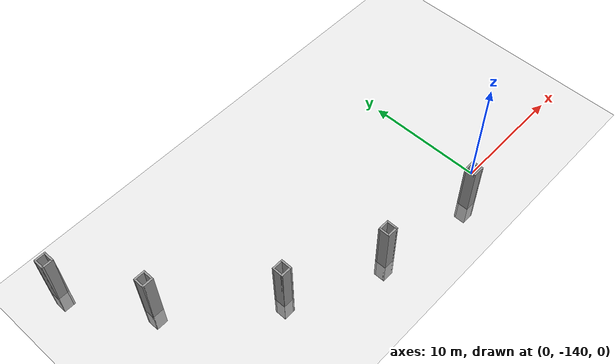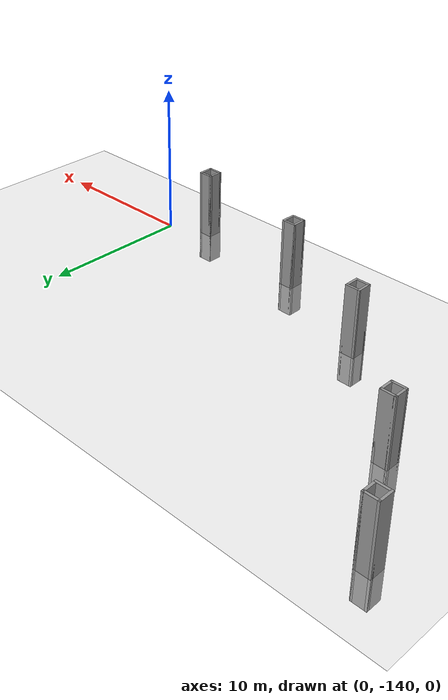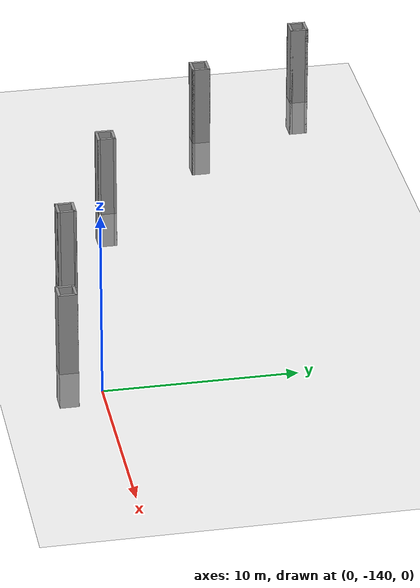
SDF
<sdf version="1.6">
 <world name="default">
  <model name="ground_plane">
   <static>1</static>
   <link name="link">
    <collision name="collision">
     <geometry><plane><normal>0 0 1</normal><size>320 320</size></plane></geometry>
     <surface>
      <contact><collide_bitmask>65535</collide_bitmask></contact>
      <friction><ode><mu>100</mu><mu2>50</mu2></ode></friction>
     </surface>
    </collision>
    <visual name="visual">
     <cast_shadows>0</cast_shadows>
     <geometry><plane><normal>0 0 1</normal><size>320 320</size></plane></geometry>
     <material>
      <script><uri>file://media/materials/scripts/gazebo.material</uri><name>Gazebo/Grey</name></script>
     </material>
    </visual>
   </link>
  </model>
  <model name="box_1mx1m_16">
   <pose>-29.5327 -123.97 0 0 -0 0</pose>
   <link name="Wall_10">
    <collision name="Wall_10_Collision">
     <geometry><box><size>1 0.15 6.555</size></box></geometry>
     <pose>0 0 1.25 0 -0 0</pose>
    </collision>
    <visual name="Wall_10_Visual">
     <pose>0 0 1.25 0 -0 0</pose>
     <geometry><box><size>1 0.15 6.555</size></box></geometry>
     <material>
      <script><uri>file://media/materials/scripts/gazebo.material</uri><name>Gazebo/Grey</name></script>
      <ambient>1 1 1 1</ambient>
     </material>
     <meta><layer>0</layer></meta>
    </visual>
    <pose>-0.425 0 0 0 -0 -1.5708</pose>
   </link>
   <link name="Wall_11">
    <collision name="Wall_11_Collision">
     <geometry><box><size>1 0.15 6.555</size></box></geometry>
     <pose>0 0 1.25 0 -0 0</pose>
    </collision>
    <visual name="Wall_11_Visual">
     <pose>0 0 1.25 0 -0 0</pose>
     <geometry><box><size>1 0.15 6.555</size></box></geometry>
     <material>
      <script><uri>file://media/materials/scripts/gazebo.material</uri><name>Gazebo/Grey</name></script>
      <ambient>1 1 1 1</ambient>
     </material>
     <meta><layer>0</layer></meta>
    </visual>
    <pose>0 -0.425 0 0 -0 0</pose>
   </link>
   <link name="Wall_12">
    <collision name="Wall_12_Collision">
     <geometry><box><size>1 0.15 6.555</size></box></geometry>
     <pose>0 0 1.25 0 -0 0</pose>
    </collision>
    <visual name="Wall_12_Visual">
     <pose>0 0 1.25 0 -0 0</pose>
     <geometry><box><size>1 0.15 6.555</size></box></geometry>
     <material>
      <script><uri>file://media/materials/scripts/gazebo.material</uri><name>Gazebo/Grey</name></script>
      <ambient>1 1 1 1</ambient>
     </material>
     <meta><layer>0</layer></meta>
    </visual>
    <pose>0.425 0 0 0 -0 1.5708</pose>
   </link>
   <link name="Wall_13">
    <collision name="Wall_13_Collision">
     <geometry><box><size>1 0.15 6.555</size></box></geometry>
     <pose>0 0 1.25 0 -0 0</pose>
    </collision>
    <visual name="Wall_13_Visual">
     <pose>0 0 1.25 0 -0 0</pose>
     <geometry><box><size>1 0.15 6.555</size></box></geometry>
     <material>
      <script><uri>file://media/materials/scripts/gazebo.material</uri><name>Gazebo/Grey</name></script>
      <ambient>1 1 1 1</ambient>
     </material>
     <meta><layer>0</layer></meta>
    </visual>
    <pose>0 0.425 0 0 -0 3.14159</pose>
   </link>
   <static>1</static>
  </model>
  <model name="box_1mx1m_18">
   <pose>-25.7567 -130.282 0 0 -0 0</pose>
   <link name="Wall_10">
    <collision name="Wall_10_Collision">
     <geometry><box><size>1 0.15 6.555</size></box></geometry>
     <pose>0 0 1.25 0 -0 0</pose>
    </collision>
    <visual name="Wall_10_Visual">
     <pose>0 0 1.25 0 -0 0</pose>
     <geometry><box><size>1 0.15 6.555</size></box></geometry>
     <material>
      <script><uri>file://media/materials/scripts/gazebo.material</uri><name>Gazebo/Grey</name></script>
      <ambient>1 1 1 1</ambient>
     </material>
     <meta><layer>0</layer></meta>
    </visual>
    <pose>-0.425 0 0 0 -0 -1.5708</pose>
   </link>
   <link name="Wall_11">
    <collision name="Wall_11_Collision">
     <geometry><box><size>1 0.15 6.555</size></box></geometry>
     <pose>0 0 1.25 0 -0 0</pose>
    </collision>
    <visual name="Wall_11_Visual">
     <pose>0 0 1.25 0 -0 0</pose>
     <geometry><box><size>1 0.15 6.555</size></box></geometry>
     <material>
      <script><uri>file://media/materials/scripts/gazebo.material</uri><name>Gazebo/Grey</name></script>
      <ambient>1 1 1 1</ambient>
     </material>
     <meta><layer>0</layer></meta>
    </visual>
    <pose>0 -0.425 0 0 -0 0</pose>
   </link>
   <link name="Wall_12">
    <collision name="Wall_12_Collision">
     <geometry><box><size>1 0.15 6.555</size></box></geometry>
     <pose>0 0 1.25 0 -0 0</pose>
    </collision>
    <visual name="Wall_12_Visual">
     <pose>0 0 1.25 0 -0 0</pose>
     <geometry><box><size>1 0.15 6.555</size></box></geometry>
     <material>
      <script><uri>file://media/materials/scripts/gazebo.material</uri><name>Gazebo/Grey</name></script>
      <ambient>1 1 1 1</ambient>
     </material>
     <meta><layer>0</layer></meta>
    </visual>
    <pose>0.425 0 0 0 -0 1.5708</pose>
   </link>
   <link name="Wall_13">
    <collision name="Wall_13_Collision">
     <geometry><box><size>1 0.15 6.555</size></box></geometry>
     <pose>0 0 1.25 0 -0 0</pose>
    </collision>
    <visual name="Wall_13_Visual">
     <pose>0 0 1.25 0 -0 0</pose>
     <geometry><box><size>1 0.15 6.555</size></box></geometry>
     <material>
      <script><uri>file://media/materials/scripts/gazebo.material</uri><name>Gazebo/Grey</name></script>
      <ambient>1 1 1 1</ambient>
     </material>
     <meta><layer>0</layer></meta>
    </visual>
    <pose>0 0.425 0 0 -0 3.14159</pose>
   </link>
   <static>1</static>
  </model>
  <model name="box_1mx1m_19">
   <pose>-18.6184 -136.737 0 0 -0 0</pose>
   <link name="Wall_10">
    <collision name="Wall_10_Collision">
     <geometry><box><size>1 0.15 6.555</size></box></geometry>
     <pose>0 0 1.25 0 -0 0</pose>
    </collision>
    <visual name="Wall_10_Visual">
     <pose>0 0 1.25 0 -0 0</pose>
     <geometry><box><size>1 0.15 6.555</size></box></geometry>
     <material>
      <script><uri>file://media/materials/scripts/gazebo.material</uri><name>Gazebo/Grey</name></script>
      <ambient>1 1 1 1</ambient>
     </material>
     <meta><layer>0</layer></meta>
    </visual>
    <pose>-0.425 0 0 0 -0 -1.5708</pose>
   </link>
   <link name="Wall_11">
    <collision name="Wall_11_Collision">
     <geometry><box><size>1 0.15 6.555</size></box></geometry>
     <pose>0 0 1.25 0 -0 0</pose>
    </collision>
    <visual name="Wall_11_Visual">
     <pose>0 0 1.25 0 -0 0</pose>
     <geometry><box><size>1 0.15 6.555</size></box></geometry>
     <material>
      <script><uri>file://media/materials/scripts/gazebo.material</uri><name>Gazebo/Grey</name></script>
      <ambient>1 1 1 1</ambient>
     </material>
     <meta><layer>0</layer></meta>
    </visual>
    <pose>0 -0.425 0 0 -0 0</pose>
   </link>
   <link name="Wall_12">
    <collision name="Wall_12_Collision">
     <geometry><box><size>1 0.15 6.555</size></box></geometry>
     <pose>0 0 1.25 0 -0 0</pose>
    </collision>
    <visual name="Wall_12_Visual">
     <pose>0 0 1.25 0 -0 0</pose>
     <geometry><box><size>1 0.15 6.555</size></box></geometry>
     <material>
      <script><uri>file://media/materials/scripts/gazebo.material</uri><name>Gazebo/Grey</name></script>
      <ambient>1 1 1 1</ambient>
     </material>
     <meta><layer>0</layer></meta>
    </visual>
    <pose>0.425 0 0 0 -0 1.5708</pose>
   </link>
   <link name="Wall_13">
    <collision name="Wall_13_Collision">
     <geometry><box><size>1 0.15 6.555</size></box></geometry>
     <pose>0 0 1.25 0 -0 0</pose>
    </collision>
    <visual name="Wall_13_Visual">
     <pose>0 0 1.25 0 -0 0</pose>
     <geometry><box><size>1 0.15 6.555</size></box></geometry>
     <material>
      <script><uri>file://media/materials/scripts/gazebo.material</uri><name>Gazebo/Grey</name></script>
      <ambient>1 1 1 1</ambient>
     </material>
     <meta><layer>0</layer></meta>
    </visual>
    <pose>0 0.425 0 0 -0 3.14159</pose>
   </link>
   <static>1</static>
  </model>
  <model name="box_1mx1m_20">
   <pose>-11.0683 -140.076 0 0 -0 0</pose>
   <link name="Wall_10">
    <collision name="Wall_10_Collision">
     <geometry><box><size>1 0.15 6.555</size></box></geometry>
     <pose>0 0 1.25 0 -0 0</pose>
    </collision>
    <visual name="Wall_10_Visual">
     <pose>0 0 1.25 0 -0 0</pose>
     <geometry><box><size>1 0.15 6.555</size></box></geometry>
     <material>
      <script><uri>file://media/materials/scripts/gazebo.material</uri><name>Gazebo/Grey</name></script>
      <ambient>1 1 1 1</ambient>
     </material>
     <meta><layer>0</layer></meta>
    </visual>
    <pose>-0.425 0 0 0 -0 -1.5708</pose>
   </link>
   <link name="Wall_11">
    <collision name="Wall_11_Collision">
     <geometry><box><size>1 0.15 6.555</size></box></geometry>
     <pose>0 0 1.25 0 -0 0</pose>
    </collision>
    <visual name="Wall_11_Visual">
     <pose>0 0 1.25 0 -0 0</pose>
     <geometry><box><size>1 0.15 6.555</size></box></geometry>
     <material>
      <script><uri>file://media/materials/scripts/gazebo.material</uri><name>Gazebo/Grey</name></script>
      <ambient>1 1 1 1</ambient>
     </material>
     <meta><layer>0</layer></meta>
    </visual>
    <pose>0 -0.425 0 0 -0 0</pose>
   </link>
   <link name="Wall_12">
    <collision name="Wall_12_Collision">
     <geometry><box><size>1 0.15 6.555</size></box></geometry>
     <pose>0 0 1.25 0 -0 0</pose>
    </collision>
    <visual name="Wall_12_Visual">
     <pose>0 0 1.25 0 -0 0</pose>
     <geometry><box><size>1 0.15 6.555</size></box></geometry>
     <material>
      <script><uri>file://media/materials/scripts/gazebo.material</uri><name>Gazebo/Grey</name></script>
      <ambient>1 1 1 1</ambient>
     </material>
     <meta><layer>0</layer></meta>
    </visual>
    <pose>0.425 0 0 0 -0 1.5708</pose>
   </link>
   <link name="Wall_13">
    <collision name="Wall_13_Collision">
     <geometry><box><size>1 0.15 6.555</size></box></geometry>
     <pose>0 0 1.25 0 -0 0</pose>
    </collision>
    <visual name="Wall_13_Visual">
     <pose>0 0 1.25 0 -0 0</pose>
     <geometry><box><size>1 0.15 6.555</size></box></geometry>
     <material>
      <script><uri>file://media/materials/scripts/gazebo.material</uri><name>Gazebo/Grey</name></script>
      <ambient>1 1 1 1</ambient>
     </material>
     <meta><layer>0</layer></meta>
    </visual>
    <pose>0 0.425 0 0 -0 3.14159</pose>
   </link>
   <static>1</static>
  </model>
  <model name="box_1mx1m_21">
   <pose>-2.54664 -141.372 0 0 -0 0</pose>
   <link name="Wall_10">
    <collision name="Wall_10_Collision">
     <geometry><box><size>1 0.15 6.555</size></box></geometry>
     <pose>0 0 1.25 0 -0 0</pose>
    </collision>
    <visual name="Wall_10_Visual">
     <pose>0 0 1.25 0 -0 0</pose>
     <geometry><box><size>1 0.15 6.555</size></box></geometry>
     <material>
      <script><uri>file://media/materials/scripts/gazebo.material</uri><name>Gazebo/Grey</name></script>
      <ambient>1 1 1 1</ambient>
     </material>
     <meta><layer>0</layer></meta>
    </visual>
    <pose>-0.425 0 0 0 -0 -1.5708</pose>
   </link>
   <link name="Wall_11">
    <collision name="Wall_11_Collision">
     <geometry><box><size>1 0.15 6.555</size></box></geometry>
     <pose>0 0 1.25 0 -0 0</pose>
    </collision>
    <visual name="Wall_11_Visual">
     <pose>0 0 1.25 0 -0 0</pose>
     <geometry><box><size>1 0.15 6.555</size></box></geometry>
     <material>
      <script><uri>file://media/materials/scripts/gazebo.material</uri><name>Gazebo/Grey</name></script>
      <ambient>1 1 1 1</ambient>
     </material>
     <meta><layer>0</layer></meta>
    </visual>
    <pose>0 -0.425 0 0 -0 0</pose>
   </link>
   <link name="Wall_12">
    <collision name="Wall_12_Collision">
     <geometry><box><size>1 0.15 6.555</size></box></geometry>
     <pose>0 0 1.25 0 -0 0</pose>
    </collision>
    <visual name="Wall_12_Visual">
     <pose>0 0 1.25 0 -0 0</pose>
     <geometry><box><size>1 0.15 6.555</size></box></geometry>
     <material>
      <script><uri>file://media/materials/scripts/gazebo.material</uri><name>Gazebo/Grey</name></script>
      <ambient>1 1 1 1</ambient>
     </material>
     <meta><layer>0</layer></meta>
    </visual>
    <pose>0.425 0 0 0 -0 1.5708</pose>
   </link>
   <link name="Wall_13">
    <collision name="Wall_13_Collision">
     <geometry><box><size>1 0.15 6.555</size></box></geometry>
     <pose>0 0 1.25 0 -0 0</pose>
    </collision>
    <visual name="Wall_13_Visual">
     <pose>0 0 1.25 0 -0 0</pose>
     <geometry><box><size>1 0.15 6.555</size></box></geometry>
     <material>
      <script><uri>file://media/materials/scripts/gazebo.material</uri><name>Gazebo/Grey</name></script>
      <ambient>1 1 1 1</ambient>
     </material>
     <meta><layer>0</layer></meta>
    </visual>
    <pose>0 0.425 0 0 -0 3.14159</pose>
   </link>
   <static>1</static>
  </model>
 </world>
</sdf>
